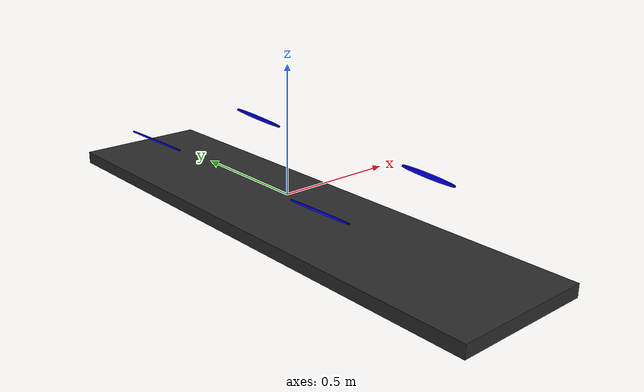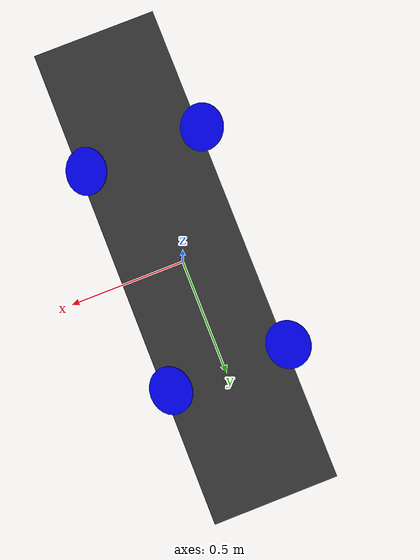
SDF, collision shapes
<?xml version="1.0"?>
<sdf version='1.10'>
  <model name='skywinger'>
    <pose>0 0 0 0 0 0</pose>
    <link name='base_link'>
      <pose>0 0 0 0 0 0</pose>
      <inertial>
        <pose>0 0 0 0 0 0</pose>
        <mass>5</mass>
        <inertia>
          <ixx>0.477708333333</ixx>
          <ixy>0</ixy>
          <ixz>0</ixz>
          <iyy>0.341666666667</iyy>
          <iyz>0</iyz>
          <izz>0.811041666667</izz>
        </inertia>
      </inertial>
      <collision name='base_link_collision'>
        <pose>0 0 -0.07 0 0 0</pose>
        <geometry>
          <box>
            <size>0.55 2.144 0.05</size>
          </box>
        </geometry>
        <surface>
          <contact>
            <ode>
              <kp>100000</kp>
              <kd>1.0</kd>
              <max_vel>0.1</max_vel>
              <min_depth>0.001</min_depth>
            </ode>
          </contact>
          <friction>
            <ode/>
          </friction>
        </surface>
      </collision>
      <visual name='base_link_visual'>
        <pose>0.53 -1.072 -0.1 1.5707963268 0 3.1415926536</pose>
        <geometry>
          <mesh>
            <scale>0.001 0.001 0.001</scale>
            <uri>model://standard_vtol/meshes/x8_wing.dae</uri>
          </mesh>
        </geometry>
        <material>
          <ambient>.175 .175 .175 1.0</ambient>
          <diffuse>.175 .175 .175 1.0</diffuse>
        </material>
      </visual>
      <visual name='m0'>
        <pose>-0.28 0.48 0.13 0 0.523599 0</pose>
        <geometry>
          <cylinder>
            <length>0.035</length>
            <radius>0.02</radius>
          </cylinder>
        </geometry>
        <material>
          <ambient>.175 .175 .175 1.0</ambient>
          <diffuse>.175 .175 .175 1.0</diffuse>
        </material>
      </visual>
      <gravity>1</gravity>
      <velocity_decay/>
      <self_collide>0</self_collide>
      <sensor name="imu_sensor" type="imu">
        <always_on>1</always_on>
        <update_rate>250</update_rate>
        <imu>
          <angular_velocity>
            <x>
              <noise type="gaussian">
                <mean>0</mean>
                <stddev>0.0003394</stddev>
                <dynamic_bias_stddev>3.8785e-05</dynamic_bias_stddev>
                <dynamic_bias_correlation_time>1000</dynamic_bias_correlation_time>
              </noise>
            </x>
            <y>
              <noise type="gaussian">
                <mean>0</mean>
                <stddev>0.0003394</stddev>
                <dynamic_bias_stddev>3.8785e-05</dynamic_bias_stddev>
                <dynamic_bias_correlation_time>1000</dynamic_bias_correlation_time>
              </noise>
            </y>
            <z>
              <noise type="gaussian">
                <mean>0</mean>
                <stddev>0.0003394</stddev>
                <dynamic_bias_stddev>3.8785e-05</dynamic_bias_stddev>
                <dynamic_bias_correlation_time>1000</dynamic_bias_correlation_time>
              </noise>
            </z>
          </angular_velocity>
          <linear_acceleration>
            <x>
              <noise type="gaussian">
                <mean>0</mean>
                <stddev>0.004</stddev>
                <dynamic_bias_stddev>0.006</dynamic_bias_stddev>
                <dynamic_bias_correlation_time>300</dynamic_bias_correlation_time>
              </noise>
            </x>
            <y>
              <noise type="gaussian">
                <mean>0</mean>
                <stddev>0.004</stddev>
                <dynamic_bias_stddev>0.006</dynamic_bias_stddev>
                <dynamic_bias_correlation_time>300</dynamic_bias_correlation_time>
              </noise>
            </y>
            <z>
              <noise type="gaussian">
                <mean>0</mean>
                <stddev>0.004</stddev>
                <dynamic_bias_stddev>0.006</dynamic_bias_stddev>
                <dynamic_bias_correlation_time>300</dynamic_bias_correlation_time>
              </noise>
            </z>
          </linear_acceleration>
        </imu>
      </sensor>
      <sensor name="air_pressure_sensor" type="air_pressure">
        <always_on>1</always_on>
        <update_rate>50</update_rate>
        <air_pressure>
          <pressure>
            <noise type="gaussian">
              <mean>0</mean>
              <stddev>0.01</stddev>
            </noise>
          </pressure>
        </air_pressure>
      </sensor>
      <sensor name="navsat_sensor" type="navsat">
        <always_on>1</always_on>
        <update_rate>30</update_rate>
      </sensor>
    </link>
    <link name='rotor_0'>
      <pose>0.24 -0.48 0.15 0 0.523599 0</pose>
      <inertial>
        <pose>0 0 0 0 0 0</pose>
        <mass>0.005</mass>
        <inertia>
          <ixx>9.75e-07</ixx>
          <ixy>0</ixy>
          <ixz>0</ixz>
          <iyy>0.000166704</iyy>
          <iyz>0</iyz>
          <izz>0.000167604</izz>
        </inertia>
      </inertial>
      <collision name='rotor_0_collision'>
        <pose>0 0 0 0 0 0</pose>
        <geometry>
          <cylinder>
            <length>0.005</length>
            <radius>0.1</radius>
          </cylinder>
        </geometry>
        <surface>
          <contact>
            <ode/>
          </contact>
          <friction>
            <ode/>
          </friction>
        </surface>
      </collision>
      <visual name='rotor_0_visual'>
        <pose>0 0 0 0 0 0</pose>
        <geometry>
          <mesh>
            <scale>1 1 1</scale>
            <uri>model://standard_vtol/meshes/iris_prop_ccw.dae</uri>
          </mesh>
        </geometry>
        <material>
          <ambient>0 0 1 1.0</ambient>
          <diffuse>0 0 1 1.0</diffuse>
        </material>
      </visual>
      <gravity>1</gravity>
      <velocity_decay/>
      <self_collide>0</self_collide>
    </link>
    <joint name='rotor_0_joint' type='revolute'>
      <child>rotor_0</child>
      <parent>base_link</parent>
      <axis>
        <xyz>0 0 1</xyz>
        <limit>
          <lower>-1e+16</lower>
          <upper>1e+16</upper>
        </limit>
        <dynamics>
          <spring_reference>0</spring_reference>
          <spring_stiffness>0</spring_stiffness>
        </dynamics>
      </axis>
    </joint>
    <link name='rotor_1'>
      <pose>-0.27 0.48 0.15 0 0.523599 0</pose>
      <inertial>
        <pose>0 0 0 0 0 0</pose>
        <mass>0.005</mass>
        <inertia>
          <ixx>9.75e-07</ixx>
          <ixy>0</ixy>
          <ixz>0</ixz>
          <iyy>0.000166704</iyy>
          <iyz>0</iyz>
          <izz>0.000167604</izz>
        </inertia>
      </inertial>
      <collision name='rotor_1_collision'>
        <pose>0 0 0 0 0 0</pose>
        <geometry>
          <cylinder>
            <length>0.005</length>
            <radius>0.1</radius>
          </cylinder>
        </geometry>
        <surface>
          <contact>
            <ode/>
          </contact>
          <friction>
            <ode/>
          </friction>
        </surface>
      </collision>
      <visual name='rotor_1_visual'>
        <pose>0 0 0 0 0 0</pose>
        <geometry>
          <mesh>
            <scale>1 1 1</scale>
            <uri>model://standard_vtol/meshes/iris_prop_ccw.dae</uri>
          </mesh>
        </geometry>
        <material>
          <ambient>0 0 1 1.0</ambient>
          <diffuse>0 0 1 1.0</diffuse>
        </material>
      </visual>
      <gravity>1</gravity>
      <velocity_decay/>
      <self_collide>0</self_collide>
    </link>
    <joint name='rotor_1_joint' type='revolute'>
      <child>rotor_1</child>
      <parent>base_link</parent>
      <axis>
        <xyz>0 0 1</xyz>
        <limit>
          <lower>-1e+16</lower>
          <upper>1e+16</upper>
        </limit>
        <dynamics>
          <spring_reference>0</spring_reference>
          <spring_stiffness>0</spring_stiffness>
        </dynamics>
      </axis>
    </joint>
    <link name='rotor_2'>
      <pose>0.24 0.48 0.15 0 0.523599 0</pose>
      <inertial>
        <pose>0 0 0 0 0 0</pose>
        <mass>0.005</mass>
        <inertia>
          <ixx>9.75e-07</ixx>
          <ixy>0</ixy>
          <ixz>0</ixz>
          <iyy>0.000166704</iyy>
          <iyz>0</iyz>
          <izz>0.000167604</izz>
        </inertia>
      </inertial>
      <collision name='rotor_2_collision'>
        <pose>0 0 0 0 0 0</pose>
        <geometry>
          <cylinder>
            <length>0.005</length>
            <radius>0.1</radius>
          </cylinder>
        </geometry>
        <surface>
          <contact>
            <ode/>
          </contact>
          <friction>
            <ode/>
          </friction>
        </surface>
      </collision>
      <visual name='rotor_2_visual'>
        <pose>0 0 0 0 0 0</pose>
        <geometry>
          <mesh>
            <scale>1 1 1</scale>
            <uri>model://standard_vtol/meshes/iris_prop_ccw.dae</uri>
          </mesh>
        </geometry>
        <material>
          <ambient>0 0 1 1.0</ambient>
          <diffuse>0 0 1 1.0</diffuse>
        </material>
      </visual>
      <gravity>1</gravity>
      <velocity_decay/>
      <self_collide>0</self_collide>
    </link>
    <joint name='rotor_2_joint' type='revolute'>
      <child>rotor_2</child>
      <parent>base_link</parent>
      <axis>
        <xyz>0 0 1</xyz>
        <limit>
          <lower>-1e+16</lower>
          <upper>1e+16</upper>
        </limit>
        <dynamics>
          <spring_reference>0</spring_reference>
          <spring_stiffness>0</spring_stiffness>
        </dynamics>
      </axis>
    </joint>
    <link name='rotor_3'>
      <pose>-0.27 -0.48 0.15 0 0.523599 0</pose>
      <inertial>
        <pose>0 0 0 0 0 0</pose>
        <mass>0.005</mass>
        <inertia>
          <ixx>9.75e-07</ixx>
          <ixy>0</ixy>
          <ixz>0</ixz>
          <iyy>0.000166704</iyy>
          <iyz>0</iyz>
          <izz>0.000167604</izz>
        </inertia>
      </inertial>
      <collision name='rotor_3_collision'>
        <pose>0 0 0 0 0 0</pose>
        <geometry>
          <cylinder>
            <length>0.005</length>
            <radius>0.1</radius>
          </cylinder>
        </geometry>
        <surface>
          <contact>
            <ode/>
          </contact>
          <friction>
            <ode/>
          </friction>
        </surface>
      </collision>
      <visual name='rotor_3_visual'>
        <pose>0 0 0 0 0 0</pose>
        <geometry>
          <mesh>
            <scale>1 1 1</scale>
            <uri>model://standard_vtol/meshes/iris_prop_ccw.dae</uri>
          </mesh>
        </geometry>
        <material>
          <ambient>0 0 1 1.0</ambient>
          <diffuse>0 0 1 1.0</diffuse>
        </material>
      </visual>
      <gravity>1</gravity>
      <velocity_decay/>
      <self_collide>0</self_collide>
    </link>
    <joint name='rotor_3_joint' type='revolute'>
      <child>rotor_3</child>
      <parent>base_link</parent>
      <axis>
        <xyz>0 0 1</xyz>
        <limit>
          <lower>-1e+16</lower>
          <upper>1e+16</upper>
        </limit>
        <dynamics>
          <spring_reference>0</spring_reference>
          <spring_stiffness>0</spring_stiffness>
        </dynamics>
      </axis>
    </joint>
    <plugin filename="gz-sim-multicopter-motor-model-system" name="gz::sim::systems::MulticopterMotorModel">
      <jointName>rotor_0_joint</jointName>
      <linkName>rotor_0</linkName>
      <turningDirection>ccw</turningDirection>
      <timeConstantUp>0.0125</timeConstantUp>
      <timeConstantDown>0.025</timeConstantDown>
      <maxRotVelocity>1500</maxRotVelocity>
      <motorConstant>5e-05</motorConstant>
      <momentConstant>0.06</momentConstant>
      <commandSubTopic>command/motor_speed</commandSubTopic>
      <motorNumber>0</motorNumber>
      <rotorDragCoefficient>0.000106428</rotorDragCoefficient>
      <rollingMomentCoefficient>1e-06</rollingMomentCoefficient>
      <rotorVelocitySlowdownSim>20</rotorVelocitySlowdownSim>
      <motorType>velocity</motorType>
    </plugin>
    <plugin filename="gz-sim-multicopter-motor-model-system" name="gz::sim::systems::MulticopterMotorModel">
      <jointName>rotor_1_joint</jointName>
      <linkName>rotor_1</linkName>
      <turningDirection>ccw</turningDirection>
      <timeConstantUp>0.0125</timeConstantUp>
      <timeConstantDown>0.025</timeConstantDown>
      <maxRotVelocity>1500</maxRotVelocity>
      <motorConstant>5e-05</motorConstant>
      <momentConstant>0.06</momentConstant>
      <commandSubTopic>command/motor_speed</commandSubTopic>
      <motorNumber>1</motorNumber>
      <rotorDragCoefficient>0.000106428</rotorDragCoefficient>
      <rollingMomentCoefficient>1e-06</rollingMomentCoefficient>
      <rotorVelocitySlowdownSim>20</rotorVelocitySlowdownSim>
      <motorType>velocity</motorType>
    </plugin>
    <plugin
      filename="gz-sim-multicopter-motor-model-system"
      name="gz::sim::systems::MulticopterMotorModel">
      <jointName>rotor_2_joint</jointName>
      <linkName>rotor_2</linkName>
      <turningDirection>cw</turningDirection>
      <timeConstantUp>0.0125</timeConstantUp>
      <timeConstantDown>0.025</timeConstantDown>
      <maxRotVelocity>1500</maxRotVelocity>
      <motorConstant>5e-05</motorConstant>
      <momentConstant>0.06</momentConstant>
      <commandSubTopic>command/motor_speed</commandSubTopic>
      <motorNumber>2</motorNumber>
      <rotorDragCoefficient>0.000106428</rotorDragCoefficient>
      <rollingMomentCoefficient>1e-06</rollingMomentCoefficient>
      <rotorVelocitySlowdownSim>20</rotorVelocitySlowdownSim>
      <motorType>velocity</motorType>
    </plugin>
    <plugin
      filename="gz-sim-multicopter-motor-model-system"
      name="gz::sim::systems::MulticopterMotorModel">
      <jointName>rotor_3_joint</jointName>
      <linkName>rotor_3</linkName>
      <turningDirection>cw</turningDirection>
      <timeConstantUp>0.0125</timeConstantUp>
      <timeConstantDown>0.025</timeConstantDown>
      <maxRotVelocity>1500</maxRotVelocity>
      <motorConstant>5e-05</motorConstant>
      <momentConstant>0.06</momentConstant>
      <commandSubTopic>command/motor_speed</commandSubTopic>
      <motorNumber>3</motorNumber>
      <rotorDragCoefficient>0.000106428</rotorDragCoefficient>
      <rollingMomentCoefficient>1e-06</rollingMomentCoefficient>
      <rotorVelocitySlowdownSim>20</rotorVelocitySlowdownSim>
      <motorType>velocity</motorType>
    </plugin>
    <static>0</static>
  </model>
</sdf>
